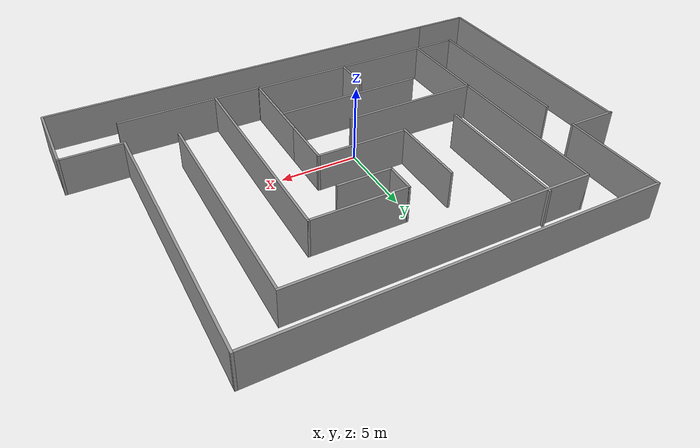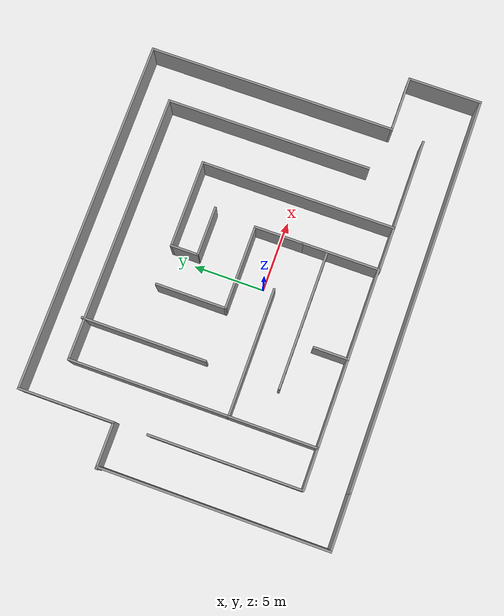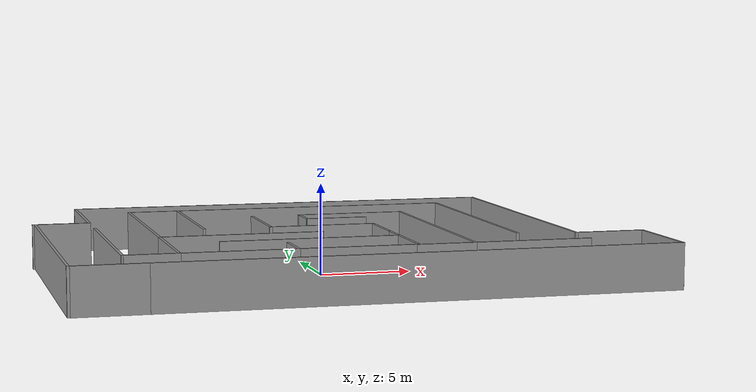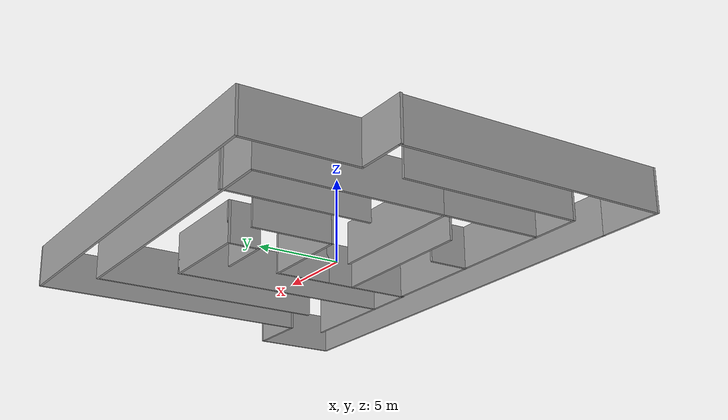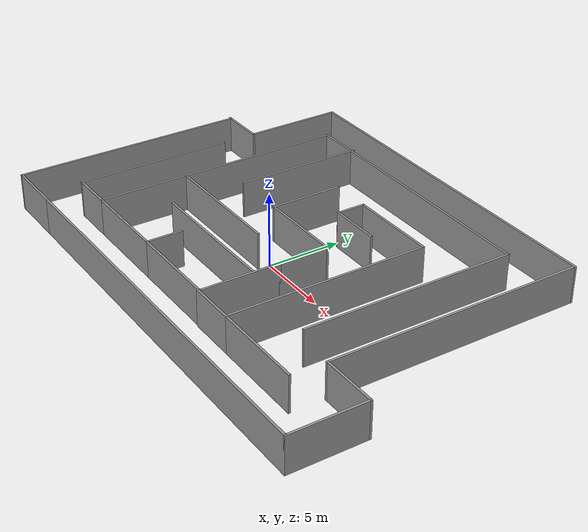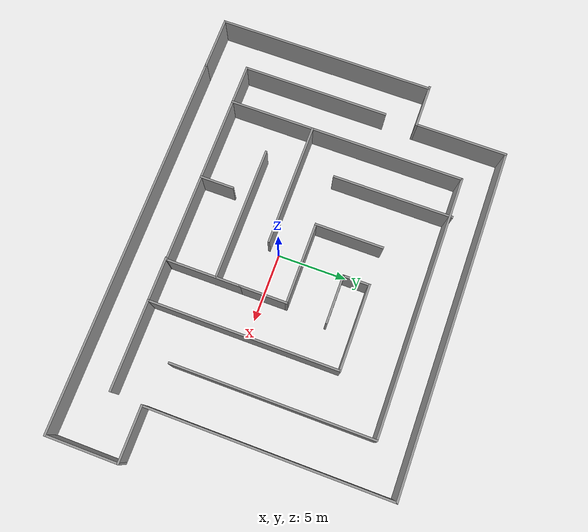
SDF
<?xml version='1.0'?>
<sdf version='1.6'>
  <model name='white_corridors'>
    <pose frame=''>0.960437 1.49085 0 0 -0 0</pose>
    <link name='Wall_10'>
      <collision name='Wall_10_Collision'>
        <geometry>
          <box>
            <size>6.25 0.15 2.5</size>
          </box>
        </geometry>
        <pose frame=''>0 0 1.25 0 -0 0</pose>
      </collision>
      <visual name='Wall_10_Visual'>
        <pose frame=''>0 0 1.25 0 -0 0</pose>
        <geometry>
          <box>
            <size>6.25 0.15 2.5</size>
          </box>
        </geometry>
        <material>
          <script>
            <uri>file://media/materials/scripts/gazebo.material</uri>
            <name>Gazebo/Grey</name>
          </script>
          <ambient>1 1 1 1</ambient>
        </material>
      </visual>
      <pose frame=''>-9.94493 -5.29748 0 0 -0 1.5708</pose>
    </link>
    <link name='Wall_11'>
      <collision name='Wall_11_Collision'>
        <geometry>
          <box>
            <size>9 0.15 2.5</size>
          </box>
        </geometry>
        <pose frame=''>0 0 1.25 0 -0 0</pose>
      </collision>
      <visual name='Wall_11_Visual'>
        <pose frame=''>0 0 1.25 0 -0 0</pose>
        <geometry>
          <box>
            <size>9 0.15 2.5</size>
          </box>
        </geometry>
        <material>
          <script>
            <uri>file://media/materials/scripts/gazebo.material</uri>
            <name>Gazebo/Grey</name>
          </script>
          <ambient>1 1 1 1</ambient>
        </material>
      </visual>
      <pose frame=''>-5.51993 -2.24748 0 0 -0 0</pose>
    </link>
    <link name='Wall_13'>
      <collision name='Wall_13_Collision'>
        <geometry>
          <box>
            <size>11.25 0.15 2.5</size>
          </box>
        </geometry>
        <pose frame=''>0 0 1.25 0 -0 0</pose>
      </collision>
      <visual name='Wall_13_Visual'>
        <pose frame=''>0 0 1.25 0 -0 0</pose>
        <geometry>
          <box>
            <size>11.25 0.15 2.5</size>
          </box>
        </geometry>
        <material>
          <script>
            <uri>file://media/materials/scripts/gazebo.material</uri>
            <name>Gazebo/Grey</name>
          </script>
          <ambient>1 1 1 1</ambient>
        </material>
      </visual>
      <pose frame=''>-9.94493 3.30252 0 0 -0 1.5708</pose>
    </link>
    <link name='Wall_14'>
      <collision name='Wall_14_Collision'>
        <geometry>
          <box>
            <size>19 0.15 2.5</size>
          </box>
        </geometry>
        <pose frame=''>0 0 1.25 0 -0 0</pose>
      </collision>
      <visual name='Wall_14_Visual'>
        <pose frame=''>0 0 1.25 0 -0 0</pose>
        <geometry>
          <box>
            <size>19 0.15 2.5</size>
          </box>
        </geometry>
        <material>
          <script>
            <uri>file://media/materials/scripts/gazebo.material</uri>
            <name>Gazebo/Grey</name>
          </script>
          <ambient>1 1 1 1</ambient>
        </material>
      </visual>
      <pose frame=''>-0.519931 8.85252 0 0 -0 0</pose>
    </link>
    <link name='Wall_15'>
      <collision name='Wall_15_Collision'>
        <geometry>
          <box>
            <size>14.5 0.15 2.5</size>
          </box>
        </geometry>
        <pose frame=''>0 0 1.25 0 -0 0</pose>
      </collision>
      <visual name='Wall_15_Visual'>
        <pose frame=''>0 0 1.25 0 -0 0</pose>
        <geometry>
          <box>
            <size>14.5 0.15 2.5</size>
          </box>
        </geometry>
        <material>
          <script>
            <uri>file://media/materials/scripts/gazebo.material</uri>
            <name>Gazebo/Grey</name>
          </script>
          <ambient>1 1 1 1</ambient>
        </material>
      </visual>
      <pose frame=''>8.90507 1.67752 0 0 0 -1.5708</pose>
    </link>
    <link name='Wall_19'>
      <collision name='Wall_19_Collision'>
        <geometry>
          <box>
            <size>3.5 0.15 2.5</size>
          </box>
        </geometry>
        <pose frame=''>0 0 1.25 0 -0 0</pose>
      </collision>
      <visual name='Wall_19_Visual'>
        <pose frame=''>0 0 1.25 0 -0 0</pose>
        <geometry>
          <box>
            <size>3.5 0.15 2.5</size>
          </box>
        </geometry>
        <material>
          <script>
            <uri>file://media/materials/scripts/gazebo.material</uri>
            <name>Gazebo/Grey</name>
          </script>
          <ambient>1 1 1 1</ambient>
        </material>
      </visual>
      <pose frame=''>2.50507 -1.32248 0 0 -0 1.5708</pose>
    </link>
    <link name='Wall_20'>
      <collision name='Wall_20_Collision'>
        <geometry>
          <box>
            <size>6 0.15 2.5</size>
          </box>
        </geometry>
        <pose frame=''>0 0 1.25 0 -0 0</pose>
      </collision>
      <visual name='Wall_20_Visual'>
        <pose frame=''>0 0 1.25 0 -0 0</pose>
        <geometry>
          <box>
            <size>6 0.15 2.5</size>
          </box>
        </geometry>
        <material>
          <script>
            <uri>file://media/materials/scripts/gazebo.material</uri>
            <name>Gazebo/Grey</name>
          </script>
          <ambient>1 1 1 1</ambient>
        </material>
      </visual>
      <pose frame=''>-0.419931 0.35252 0 0 -0 3.14159</pose>
    </link>
    <link name='Wall_21'>
      <collision name='Wall_21_Collision'>
        <geometry>
          <box>
            <size>5 0.15 2.5</size>
          </box>
        </geometry>
        <pose frame=''>0 0 1.25 0 -0 0</pose>
      </collision>
      <visual name='Wall_21_Visual'>
        <pose frame=''>0 0 1.25 0 -0 0</pose>
        <geometry>
          <box>
            <size>5 0.15 2.5</size>
          </box>
        </geometry>
        <material>
          <script>
            <uri>file://media/materials/scripts/gazebo.material</uri>
            <name>Gazebo/Grey</name>
          </script>
          <ambient>1 1 1 1</ambient>
        </material>
      </visual>
      <pose frame=''>-3.34493 2.77752 0 0 -0 1.5708</pose>
    </link>
    <link name='Wall_23'>
      <collision name='Wall_23_Collision'>
        <geometry>
          <box>
            <size>9.75 0.15 2.5</size>
          </box>
        </geometry>
        <pose frame=''>0 0 1.25 0 -0 0</pose>
      </collision>
      <visual name='Wall_23_Visual'>
        <pose frame=''>0 0 1.25 0 -0 0</pose>
        <geometry>
          <box>
            <size>9.75 0.15 2.5</size>
          </box>
        </geometry>
        <material>
          <script>
            <uri>file://media/materials/scripts/gazebo.material</uri>
            <name>Gazebo/Grey</name>
          </script>
          <ambient>1 1 1 1</ambient>
        </material>
      </visual>
      <pose frame=''>-2.34964 -4.74376 0 0 -0 3.14159</pose>
    </link>
    <link name='Wall_25'>
      <collision name='Wall_25_Collision'>
        <geometry>
          <box>
            <size>8.75 0.15 2.5</size>
          </box>
        </geometry>
        <pose frame=''>0 0 1.25 0 -0 0</pose>
      </collision>
      <visual name='Wall_25_Visual'>
        <pose frame=''>0 0 1.25 0 -0 0</pose>
        <geometry>
          <box>
            <size>8.75 0.15 2.5</size>
          </box>
        </geometry>
        <material>
          <script>
            <uri>file://media/materials/scripts/gazebo.material</uri>
            <name>Gazebo/Grey</name>
          </script>
          <ambient>1 1 1 1</ambient>
        </material>
      </visual>
      <pose frame=''>-7.07 4.70788 0 0 0 -1.5708</pose>
    </link>
    <link name='Wall_29'>
      <collision name='Wall_29_Collision'>
        <geometry>
          <box>
            <size>6.25 0.15 2.5</size>
          </box>
        </geometry>
        <pose frame=''>0 0 1.25 0 -0 0</pose>
      </collision>
      <visual name='Wall_29_Visual'>
        <pose frame=''>0 0 1.25 0 -0 0</pose>
        <geometry>
          <box>
            <size>6.25 0.15 2.5</size>
          </box>
        </geometry>
        <material>
          <script>
            <uri>file://media/materials/scripts/gazebo.material</uri>
            <name>Gazebo/Grey</name>
          </script>
          <ambient>1 1 1 1</ambient>
        </material>
      </visual>
      <pose frame=''>2.48701 5.18902 0 0 -0 0</pose>
    </link>
    <link name='Wall_30'>
      <collision name='Wall_30_Collision'>
        <geometry>
          <box>
            <size>13.75 0.15 2.5</size>
          </box>
        </geometry>
        <pose frame=''>0 0 1.25 0 -0 0</pose>
      </collision>
      <visual name='Wall_30_Visual'>
        <pose frame=''>0 0 1.25 0 -0 0</pose>
        <geometry>
          <box>
            <size>13.75 0.15 2.5</size>
          </box>
        </geometry>
        <material>
          <script>
            <uri>file://media/materials/scripts/gazebo.material</uri>
            <name>Gazebo/Grey</name>
          </script>
          <ambient>1 1 1 1</ambient>
        </material>
      </visual>
      <pose frame=''>5.53701 -1.61098 0 0 0 -1.5708</pose>
    </link>
    <link name='Wall_31'>
      <collision name='Wall_31_Collision'>
        <geometry>
          <box>
            <size>3.25 0.15 2.5</size>
          </box>
        </geometry>
        <pose frame=''>0 0 1.25 0 -0 0</pose>
      </collision>
      <visual name='Wall_31_Visual'>
        <pose frame=''>0 0 1.25 0 -0 0</pose>
        <geometry>
          <box>
            <size>3.25 0.15 2.5</size>
          </box>
        </geometry>
        <material>
          <script>
            <uri>file://media/materials/scripts/gazebo.material</uri>
            <name>Gazebo/Grey</name>
          </script>
          <ambient>1 1 1 1</ambient>
        </material>
      </visual>
      <pose frame=''>3.98701 -8.41098 0 0 -0 3.14159</pose>
    </link>
    <link name='Wall_33'>
      <collision name='Wall_33_Collision'>
        <geometry>
          <box>
            <size>6.5 0.15 2.5</size>
          </box>
        </geometry>
        <pose frame=''>0 0 1.25 0 -0 0</pose>
      </collision>
      <visual name='Wall_33_Visual'>
        <pose frame=''>0 0 1.25 0 -0 0</pose>
        <geometry>
          <box>
            <size>6.5 0.15 2.5</size>
          </box>
        </geometry>
        <material>
          <script>
            <uri>file://media/materials/scripts/gazebo.material</uri>
            <name>Gazebo/Grey</name>
          </script>
          <ambient>1 1 1 1</ambient>
        </material>
      </visual>
      <pose frame=''>8.71201 -8.41098 0 0 -0 0</pose>
    </link>
    <link name='Wall_37'>
      <collision name='Wall_37_Collision'>
        <geometry>
          <box>
            <size>3.5 0.15 2.5</size>
          </box>
        </geometry>
        <pose frame=''>0 0 1.25 0 -0 0</pose>
      </collision>
      <visual name='Wall_37_Visual'>
        <pose frame=''>0 0 1.25 0 -0 0</pose>
        <geometry>
          <box>
            <size>3.5 0.15 2.5</size>
          </box>
        </geometry>
        <material>
          <script>
            <uri>file://media/materials/scripts/gazebo.material</uri>
            <name>Gazebo/Grey</name>
          </script>
          <ambient>1 1 1 1</ambient>
        </material>
      </visual>
      <pose frame=''>1.16107 3.31785 0 0 -0 0</pose>
    </link>
    <link name='Wall_4'>
      <collision name='Wall_4_Collision'>
        <geometry>
          <box>
            <size>5.5 0.15 2.5</size>
          </box>
        </geometry>
        <pose frame=''>0 0 1.25 0 -0 0</pose>
      </collision>
      <visual name='Wall_4_Visual'>
        <pose frame=''>0 0 1.25 0 -0 0</pose>
        <geometry>
          <box>
            <size>5.5 0.15 2.5</size>
          </box>
        </geometry>
        <material>
          <script>
            <uri>file://media/materials/scripts/gazebo.material</uri>
            <name>Gazebo/Grey</name>
          </script>
          <ambient>1 1 1 1</ambient>
        </material>
      </visual>
      <pose frame=''>2.50507 -5.67248 0 0 0 -1.5708</pose>
    </link>
    <link name='Wall_43'>
      <collision name='Wall_43_Collision'>
        <geometry>
          <box>
            <size>2 0.15 2.5</size>
          </box>
        </geometry>
        <pose frame=''>0 0 1.25 0 -0 0</pose>
      </collision>
      <visual name='Wall_43_Visual'>
        <pose frame=''>0 0 1.25 0 -0 0</pose>
        <geometry>
          <box>
            <size>2 0.15 2.5</size>
          </box>
        </geometry>
        <material>
          <script>
            <uri>file://media/materials/scripts/gazebo.material</uri>
            <name>Gazebo/Grey</name>
          </script>
          <ambient>1 1 1 1</ambient>
        </material>
      </visual>
      <pose frame=''>-0.562989 4.26402 0 0 0 -1.5708</pose>
    </link>
    <link name='Wall_46'>
      <collision name='Wall_46_Collision'>
        <geometry>
          <box>
            <size>28 0.15 2.5</size>
          </box>
        </geometry>
        <pose frame=''>0 0 1.25 0 -0 0</pose>
      </collision>
      <visual name='Wall_46_Visual'>
        <pose frame=''>0 0 1.25 0 -0 0</pose>
        <geometry>
          <box>
            <size>28 0.15 2.5</size>
          </box>
        </geometry>
        <material>
          <script>
            <uri>file://media/materials/scripts/gazebo.material</uri>
            <name>Gazebo/Grey</name>
          </script>
          <ambient>1 1 1 1</ambient>
        </material>
      </visual>
      <pose frame=''>1.975 -11.225 0 0 -0 0</pose>
    </link>
    <link name='Wall_47'>
      <collision name='Wall_47_Collision'>
        <geometry>
          <box>
            <size>5.25 0.15 2.5</size>
          </box>
        </geometry>
        <pose frame=''>0 0 1.25 0 -0 0</pose>
      </collision>
      <visual name='Wall_47_Visual'>
        <pose frame=''>0 0 1.25 0 -0 0</pose>
        <geometry>
          <box>
            <size>5.25 0.15 2.5</size>
          </box>
        </geometry>
        <material>
          <script>
            <uri>file://media/materials/scripts/gazebo.material</uri>
            <name>Gazebo/Grey</name>
          </script>
          <ambient>1 1 1 1</ambient>
        </material>
      </visual>
      <pose frame=''>15.9 -8.675 0 0 -0 1.5708</pose>
    </link>
    <link name='Wall_48'>
      <collision name='Wall_48_Collision'>
        <geometry>
          <box>
            <size>4 0.15 2.5</size>
          </box>
        </geometry>
        <pose frame=''>0 0 1.25 0 -0 0</pose>
      </collision>
      <visual name='Wall_48_Visual'>
        <pose frame=''>0 0 1.25 0 -0 0</pose>
        <geometry>
          <box>
            <size>4 0.15 2.5</size>
          </box>
        </geometry>
        <material>
          <script>
            <uri>file://media/materials/scripts/gazebo.material</uri>
            <name>Gazebo/Grey</name>
          </script>
          <ambient>1 1 1 1</ambient>
        </material>
      </visual>
      <pose frame=''>13.975 -6.125 0 0 -0 3.14159</pose>
    </link>
    <link name='Wall_49'>
      <collision name='Wall_49_Collision'>
        <geometry>
          <box>
            <size>17.5 0.15 2.5</size>
          </box>
        </geometry>
        <pose frame=''>0 0 1.25 0 -0 0</pose>
      </collision>
      <visual name='Wall_49_Visual'>
        <pose frame=''>0 0 1.25 0 -0 0</pose>
        <geometry>
          <box>
            <size>17.5 0.15 2.5</size>
          </box>
        </geometry>
        <material>
          <script>
            <uri>file://media/materials/scripts/gazebo.material</uri>
            <name>Gazebo/Grey</name>
          </script>
          <ambient>1 1 1 1</ambient>
        </material>
      </visual>
      <pose frame=''>12.05 2.55 0 0 -0 1.5708</pose>
    </link>
    <link name='Wall_50'>
      <collision name='Wall_50_Collision'>
        <geometry>
          <box>
            <size>25 0.15 2.5</size>
          </box>
        </geometry>
        <pose frame=''>0 0 1.25 0 -0 0</pose>
      </collision>
      <visual name='Wall_50_Visual'>
        <pose frame=''>0 0 1.25 0 -0 0</pose>
        <geometry>
          <box>
            <size>25 0.15 2.5</size>
          </box>
        </geometry>
        <material>
          <script>
            <uri>file://media/materials/scripts/gazebo.material</uri>
            <name>Gazebo/Grey</name>
          </script>
          <ambient>1 1 1 1</ambient>
        </material>
      </visual>
      <pose frame=''>-0.375001 11.225 0 0 -0 3.14159</pose>
    </link>
    <link name='Wall_51'>
      <collision name='Wall_51_Collision'>
        <geometry>
          <box>
            <size>6.75 0.15 2.5</size>
          </box>
        </geometry>
        <pose frame=''>0 0 1.25 0 -0 0</pose>
      </collision>
      <visual name='Wall_51_Visual'>
        <pose frame=''>0 0 1.25 0 -0 0</pose>
        <geometry>
          <box>
            <size>6.75 0.15 2.5</size>
          </box>
        </geometry>
        <material>
          <script>
            <uri>file://media/materials/scripts/gazebo.material</uri>
            <name>Gazebo/Grey</name>
          </script>
          <ambient>1 1 1 1</ambient>
        </material>
      </visual>
      <pose frame=''>-12.8 7.925 0 0 0 -1.5708</pose>
    </link>
    <link name='Wall_52'>
      <collision name='Wall_52_Collision'>
        <geometry>
          <box>
            <size>3.25 0.15 2.5</size>
          </box>
        </geometry>
        <pose frame=''>0 0 1.25 0 -0 0</pose>
      </collision>
      <visual name='Wall_52_Visual'>
        <pose frame=''>0 0 1.25 0 -0 0</pose>
        <geometry>
          <box>
            <size>3.25 0.15 2.5</size>
          </box>
        </geometry>
        <material>
          <script>
            <uri>file://media/materials/scripts/gazebo.material</uri>
            <name>Gazebo/Grey</name>
          </script>
          <ambient>1 1 1 1</ambient>
        </material>
      </visual>
      <pose frame=''>-14.35 4.625 0 0 -0 3.14159</pose>
    </link>
    <link name='Wall_56'>
      <collision name='Wall_56_Collision'>
        <geometry>
          <box>
            <size>4 0.15 2.5</size>
          </box>
        </geometry>
        <pose frame=''>0 0 1.25 0 -0 0</pose>
      </collision>
      <visual name='Wall_56_Visual'>
        <pose frame=''>0 0 1.25 0 -0 0</pose>
        <geometry>
          <box>
            <size>4 0.15 2.5</size>
          </box>
        </geometry>
        <material>
          <script>
            <uri>file://media/materials/scripts/gazebo.material</uri>
            <name>Gazebo/Grey</name>
          </script>
          <ambient>1 1 1 1</ambient>
        </material>
      </visual>
      <pose frame=''>-13.875 -11.225 0 0 -0 3.14159</pose>
    </link>
    <link name='Wall_58'>
      <collision name='Wall_58_Collision'>
        <geometry>
          <box>
            <size>16 0.15 2.5</size>
          </box>
        </geometry>
        <pose frame=''>0 0 1.25 0 -0 0</pose>
      </collision>
      <visual name='Wall_58_Visual'>
        <pose frame=''>0 0 1.25 0 -0 0</pose>
        <geometry>
          <box>
            <size>16 0.15 2.5</size>
          </box>
        </geometry>
        <material>
          <script>
            <uri>file://media/materials/scripts/gazebo.material</uri>
            <name>Gazebo/Grey</name>
          </script>
          <ambient>1 1 1 1</ambient>
        </material>
      </visual>
      <pose frame=''>-15.8 -3.3 0 0 -0 1.5708</pose>
    </link>
    <link name='Wall_6'>
      <collision name='Wall_6_Collision'>
        <geometry>
          <box>
            <size>6.5 0.15 2.5</size>
          </box>
        </geometry>
        <pose frame=''>0 0 1.25 0 -0 0</pose>
      </collision>
      <visual name='Wall_6_Visual'>
        <pose frame=''>0 0 1.25 0 -0 0</pose>
        <geometry>
          <box>
            <size>6.5 0.15 2.5</size>
          </box>
        </geometry>
        <material>
          <script>
            <uri>file://media/materials/scripts/gazebo.material</uri>
            <name>Gazebo/Grey</name>
          </script>
          <ambient>1 1 1 1</ambient>
        </material>
      </visual>
      <pose frame=''>-0.669931 -8.34748 0 0 -0 3.14159</pose>
    </link>
    <link name='Wall_60'>
      <collision name='Wall_60_Collision'>
        <geometry>
          <box>
            <size>3 0.15 2.5</size>
          </box>
        </geometry>
        <pose frame=''>0 0 1.25 0 -0 0</pose>
      </collision>
      <visual name='Wall_60_Visual'>
        <pose frame=''>0 0 1.25 0 -0 0</pose>
        <geometry>
          <box>
            <size>3 0.15 2.5</size>
          </box>
        </geometry>
        <material>
          <script>
            <uri>file://media/materials/scripts/gazebo.material</uri>
            <name>Gazebo/Grey</name>
          </script>
          <ambient>1 1 1 1</ambient>
        </material>
      </visual>
      <pose frame=''>-11.3699 -8.34748 0 0 -0 3.14159</pose>
    </link>
    <link name='Wall_61'>
      <collision name='Wall_61_Collision'>
        <geometry>
          <box>
            <size>10.75 0.15 2.5</size>
          </box>
        </geometry>
        <pose frame=''>0 0 1.25 0 -0 0</pose>
      </collision>
      <visual name='Wall_61_Visual'>
        <pose frame=''>0 0 1.25 0 -0 0</pose>
        <geometry>
          <box>
            <size>10.75 0.15 2.5</size>
          </box>
        </geometry>
        <material>
          <script>
            <uri>file://media/materials/scripts/gazebo.material</uri>
            <name>Gazebo/Grey</name>
          </script>
          <ambient>1 1 1 1</ambient>
        </material>
      </visual>
      <pose frame=''>-12.7949 -3.04748 0 0 -0 1.5708</pose>
    </link>
    <link name='Wall_7'>
      <collision name='Wall_7_Collision'>
        <geometry>
          <box>
            <size>2.5 0.15 2.5</size>
          </box>
        </geometry>
        <pose frame=''>0 0 1.25 0 -0 0</pose>
      </collision>
      <visual name='Wall_7_Visual'>
        <pose frame=''>0 0 1.25 0 -0 0</pose>
        <geometry>
          <box>
            <size>2.5 0.15 2.5</size>
          </box>
        </geometry>
        <material>
          <script>
            <uri>file://media/materials/scripts/gazebo.material</uri>
            <name>Gazebo/Grey</name>
          </script>
          <ambient>1 1 1 1</ambient>
        </material>
      </visual>
      <pose frame=''>-3.84493 -7.17248 0 0 -0 1.5708</pose>
    </link>
    <link name='Wall_9'>
      <collision name='Wall_9_Collision'>
        <geometry>
          <box>
            <size>6.25 0.15 2.5</size>
          </box>
        </geometry>
        <pose frame=''>0 0 1.25 0 -0 0</pose>
      </collision>
      <visual name='Wall_9_Visual'>
        <pose frame=''>0 0 1.25 0 -0 0</pose>
        <geometry>
          <box>
            <size>6.25 0.15 2.5</size>
          </box>
        </geometry>
        <material>
          <script>
            <uri>file://media/materials/scripts/gazebo.material</uri>
            <name>Gazebo/Grey</name>
          </script>
          <ambient>1 1 1 1</ambient>
        </material>
      </visual>
      <pose frame=''>-6.89493 -8.34748 0 0 -0 3.14159</pose>
    </link>
    <static>1</static>
  </model>
</sdf>
